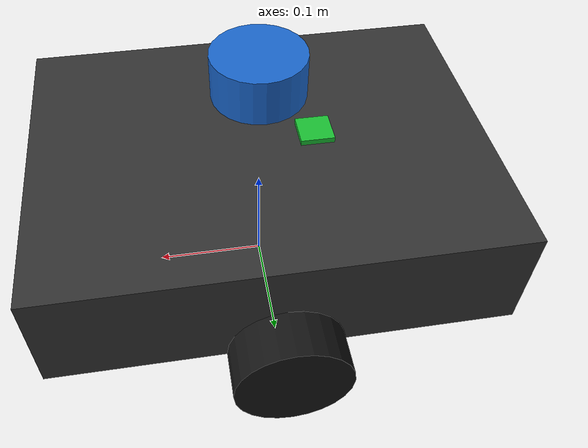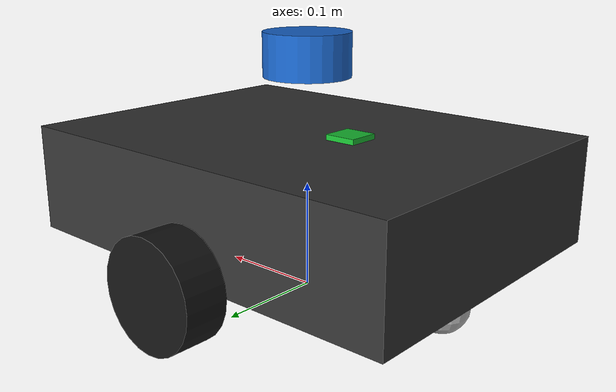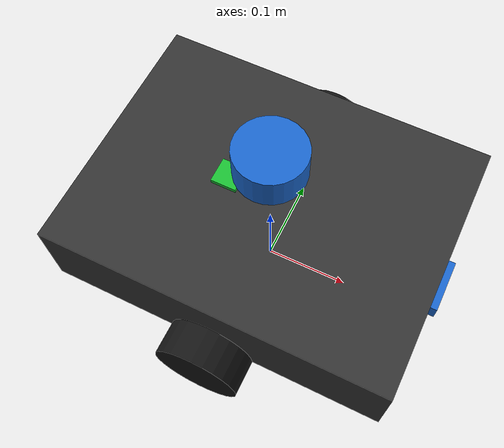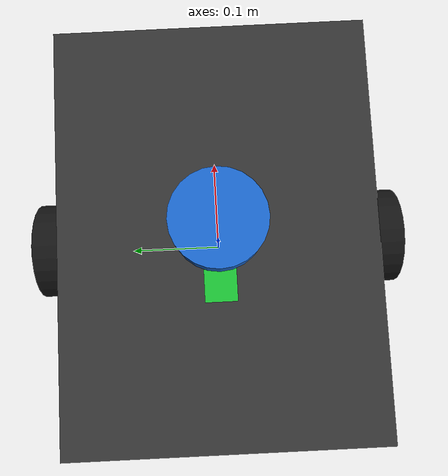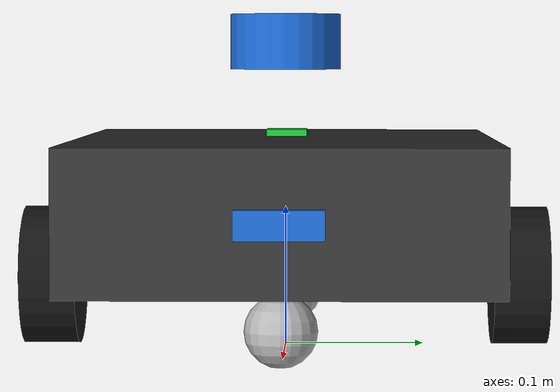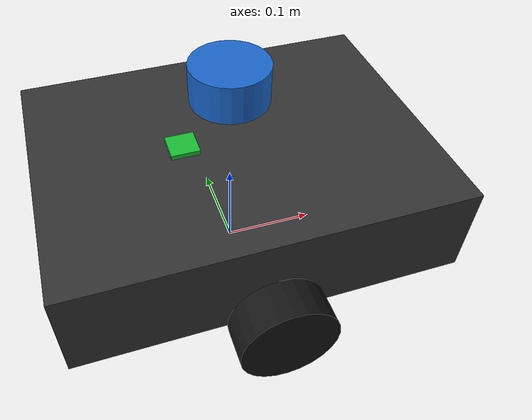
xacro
<?xml version="1.0"?>
<robot xmlns:xacro="http://www.ros.org/wiki/xacro" name="autonomous_nav_bot">

  <!-- ── Include helper files ─────────────────────────────────────────── -->
  <!-- $(find pkg) resolves to the installed share directory of the package -->
  <xacro:include filename="$(find autonomous_nav_bot)/urdf/materials.xacro"/>
  <xacro:include filename="$(find autonomous_nav_bot)/urdf/gazebo.xacro"/>

  <!-- Chassis (the main body box) -->
  <xacro:property name="chassis_length" value="0.40"/>  <!-- metres, front-to-back -->
  <xacro:property name="chassis_width"  value="0.30"/>  <!-- metres, left-to-right -->
  <xacro:property name="chassis_height" value="0.10"/>  <!-- metres, top-to-bottom -->
  <xacro:property name="chassis_mass"   value="5.0"/>   <!-- kg -->

  <!-- Drive wheels (two motorised wheels on the sides) -->
  <xacro:property name="wheel_radius"     value="0.05"/>  <!-- metres -->
  <xacro:property name="wheel_width"      value="0.04"/>  <!-- metres (axle depth) -->
  <xacro:property name="wheel_mass"       value="0.5"/>   <!-- kg -->
  <!-- Separation = chassis_width + one wheel_width on each side -->
  <xacro:property name="wheel_separation" value="${chassis_width + wheel_width}"/>

  <!-- Caster wheels (passive ball-casters for stability) -->
  <xacro:property name="caster_radius" value="0.025"/>  <!-- metres — half of wheel_radius -->
  <xacro:property name="caster_mass"   value="0.1"/>    <!-- kg -->

  <!-- Box inertia (chassis, camera, IMU) -->
  <xacro:macro name="box_inertia" params="mass x y z">
    <inertial>
      <origin xyz="0 0 0" rpy="0 0 0"/>
      <mass value="${mass}"/>
      <inertia
        ixx="${(1/12) * mass * (y*y + z*z)}" ixy="0.0" ixz="0.0"
        iyy="${(1/12) * mass * (x*x + z*z)}" iyz="0.0"
        izz="${(1/12) * mass * (x*x + y*y)}"/>
    </inertial>
  </xacro:macro>

  <!-- Cylinder inertia (wheels, LiDAR) — axis along Z before any rotation -->
  <xacro:macro name="cylinder_inertia" params="mass r h">
    <inertial>
      <origin xyz="0 0 0" rpy="0 0 0"/>
      <mass value="${mass}"/>
      <inertia
        ixx="${(1/12) * mass * (3*r*r + h*h)}" ixy="0.0" ixz="0.0"
        iyy="${(1/12) * mass * (3*r*r + h*h)}" iyz="0.0"
        izz="${(1/2)  * mass * r*r}"/>
    </inertial>
  </xacro:macro>

  <!-- Sphere inertia (caster balls) -->
  <xacro:macro name="sphere_inertia" params="mass r">
    <inertial>
      <origin xyz="0 0 0" rpy="0 0 0"/>
      <mass value="${mass}"/>
      <inertia
        ixx="${(2/5) * mass * r*r}" ixy="0.0" ixz="0.0"
        iyy="${(2/5) * mass * r*r}" iyz="0.0"
        izz="${(2/5) * mass * r*r}"/>
    </inertial>
  </xacro:macro>

  <link name="base_footprint"/>

  <!--
    Lift base_link up to axle height (wheel_radius = 0.05 m).
    This means base_link is at the height of the wheel centres —
    wheels go downward from here to touch the floor.
  -->
  <joint name="base_footprint_joint" type="fixed">
    <parent link="base_footprint"/>
    <child  link="base_link"/>
    <origin xyz="0 0 ${wheel_radius}" rpy="0 0 0"/>
  </joint>

  <link name="base_link">

    <!-- Visual: what you see in RViz2 / Gazebo -->
    <visual>
      <!-- Shift the box up so its BOTTOM aligns with base_link origin -->
      <origin xyz="0 0 ${chassis_height/2}" rpy="0 0 0"/>
      <geometry>
        <box size="${chassis_length} ${chassis_width} ${chassis_height}"/>
      </geometry>
      <material name="dark_gray"/>
    </visual>

    <!-- Collision: simplified shape used by the physics engine for contacts -->
    <collision>
      <origin xyz="0 0 ${chassis_height/2}" rpy="0 0 0"/>
      <geometry>
        <box size="${chassis_length} ${chassis_width} ${chassis_height}"/>
      </geometry>
    </collision>

    <!-- Inertia: centred on the chassis visual, not on base_link origin -->
    <inertial>
      <origin xyz="0 0 ${chassis_height/2}" rpy="0 0 0"/>
      <mass value="${chassis_mass}"/>
      <inertia
        ixx="${(1/12)*chassis_mass*(chassis_width*chassis_width + chassis_height*chassis_height)}"
        ixy="0.0" ixz="0.0"
        iyy="${(1/12)*chassis_mass*(chassis_length*chassis_length + chassis_height*chassis_height)}"
        iyz="0.0"
        izz="${(1/12)*chassis_mass*(chassis_length*chassis_length + chassis_width*chassis_width)}"/>
    </inertial>

  </link>

  <xacro:macro name="drive_wheel" params="name y_offset">

    <link name="${name}_wheel_link">
      <visual>
        <!-- rpy="${pi/2} 0 0" rotates the cylinder so it lies on its side -->
        <origin xyz="0 0 0" rpy="${pi/2} 0 0"/>
        <geometry>
          <cylinder radius="${wheel_radius}" length="${wheel_width}"/>
        </geometry>
        <material name="black"/>
      </visual>
      <collision>
        <origin xyz="0 0 0" rpy="${pi/2} 0 0"/>
        <geometry>
          <cylinder radius="${wheel_radius}" length="${wheel_width}"/>
        </geometry>
      </collision>
      <xacro:cylinder_inertia mass="${wheel_mass}"
                              r="${wheel_radius}" h="${wheel_width}"/>
    </link>

    <!--
      Joint origin: x=0 (centre of chassis), y=±offset, z=0 (axle level).
      axis xyz="0 1 0" means the wheel spins around the Y-axis.
    -->
    <joint name="${name}_wheel_joint" type="continuous">
      <parent link="base_link"/>
      <child  link="${name}_wheel_link"/>
      <origin xyz="0 ${y_offset} 0" rpy="0 0 0"/>
      <axis xyz="0 1 0"/>
      <limit effort="10.0" velocity="5.0"/>     <!-- N·m, rad/s -->
      <dynamics damping="0.1" friction="0.1"/>  <!-- light friction for realism -->
    </joint>

  </xacro:macro>

  <!-- Instantiate left wheel (+Y side) and right wheel (−Y side) -->
  <xacro:drive_wheel name="left"  y_offset="${ chassis_width/2 + wheel_width/2}"/>
  <xacro:drive_wheel name="right" y_offset="${-(chassis_width/2 + wheel_width/2)}"/>

  <xacro:macro name="caster_wheel" params="name x_offset">

    <link name="${name}_caster_link">
      <visual>
        <geometry>
          <sphere radius="${caster_radius}"/>
        </geometry>
        <material name="light_gray"/>
      </visual>
      <collision>
        <geometry>
          <sphere radius="${caster_radius}"/>
        </geometry>
      </collision>
      <xacro:sphere_inertia mass="${caster_mass}" r="${caster_radius}"/>
    </link>

    <joint name="${name}_caster_joint" type="fixed">
      <parent link="base_link"/>
      <child  link="${name}_caster_link"/>
      <!--
        z = caster_radius − wheel_radius = 0.025 − 0.05 = −0.025 m
        In world frame: 0.05 + (−0.025) = 0.025 m = caster_radius → bottom at 0 ✓
      -->
      <origin xyz="${x_offset} 0 ${caster_radius - wheel_radius}" rpy="0 0 0"/>
    </joint>

  </xacro:macro>

  <!-- Casters at front and rear corners of the chassis floor.
       name="front" → link becomes "front_caster_link" (not "front_caster_caster_link") -->
  <xacro:caster_wheel name="front"
    x_offset="${ chassis_length/2 - caster_radius * 2}"/>
  <xacro:caster_wheel name="rear"
    x_offset="${-(chassis_length/2 - caster_radius * 2)}"/>

  <link name="lidar_link">
    <visual>
      <!-- Cylinder standing upright (no rpy needed — default axis is Z) -->
      <geometry>
        <cylinder radius="0.04" length="0.04"/>
      </geometry>
      <material name="blue"/>
    </visual>
    <collision>
      <geometry>
        <cylinder radius="0.04" length="0.04"/>
      </geometry>
    </collision>
    <xacro:cylinder_inertia mass="0.15" r="0.04" h="0.04"/>
  </link>

  <!--
    z = chassis_height + 0.07: 7 cm above the top surface of the chassis
    (chassis_height puts us at the top, 0.07 is mount + half-sensor height)
  -->
  <joint name="lidar_joint" type="fixed">
    <parent link="base_link"/>
    <child  link="lidar_link"/>
    <origin xyz="0 0 ${chassis_height + 0.07}" rpy="0 0 0"/>
  </joint>

  <link name="camera_link">
    <visual>
      <geometry>
        <box size="0.02 0.06 0.02"/>  <!-- thin bar, wide enough for lens -->
      </geometry>
      <material name="blue"/>
    </visual>
    <collision>
      <geometry>
        <box size="0.02 0.06 0.02"/>
      </geometry>
    </collision>
    <xacro:box_inertia mass="0.05" x="0.02" y="0.06" z="0.02"/>
  </link>

  <joint name="camera_joint" type="fixed">
    <parent link="base_link"/>
    <child  link="camera_link"/>
    <!-- Front face (x = chassis_length/2), mid-height of chassis -->
    <origin xyz="${chassis_length/2} 0 ${chassis_height/2}" rpy="0 0 0"/>
  </joint>

  <!-- Optical frame: rotated to match ROS image coordinate conventions -->
  <link name="camera_optical_link"/>
  <joint name="camera_optical_joint" type="fixed">
    <parent link="camera_link"/>
    <child  link="camera_optical_link"/>
    <origin xyz="0 0 0" rpy="${-pi/2} 0 ${-pi/2}"/>
  </joint>

  <link name="imu_link">
    <visual>
      <geometry>
        <box size="0.03 0.03 0.01"/>  <!-- small PCB-sized chip -->
      </geometry>
      <material name="green"/>
    </visual>
    <collision>
      <geometry>
        <box size="0.03 0.03 0.01"/>
      </geometry>
    </collision>
    <xacro:box_inertia mass="0.02" x="0.03" y="0.03" z="0.01"/>
  </link>

  <joint name="imu_joint" type="fixed">
    <parent link="base_link"/>
    <child  link="imu_link"/>
    <!-- Top of chassis (z = chassis_height), slightly toward rear -->
    <origin xyz="-0.05 0 ${chassis_height}" rpy="0 0 0"/>
  </joint>

</robot>

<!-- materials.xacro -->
<robot xmlns:xacro="http://www.ros.org/wiki/xacro">

  <material name="black">
    <color rgba="0.08 0.08 0.08 1.0"/>
  </material>

  <material name="dark_gray">
    <color rgba="0.20 0.20 0.20 1.0"/>
  </material>

  <material name="light_gray">
    <color rgba="0.70 0.70 0.70 1.0"/>
  </material>

  <material name="white">
    <color rgba="0.95 0.95 0.95 1.0"/>
  </material>

  <!-- Sensor color (LiDAR, camera housing) -->
  <material name="blue">
    <color rgba="0.10 0.40 0.80 1.0"/>
  </material>

  <!-- IMU color -->
  <material name="green">
    <color rgba="0.10 0.75 0.20 1.0"/>
  </material>

  <material name="red">
    <color rgba="0.80 0.10 0.10 1.0"/>
  </material>

</robot>
